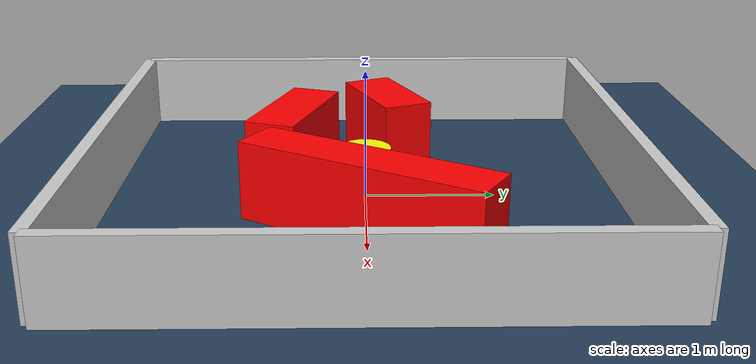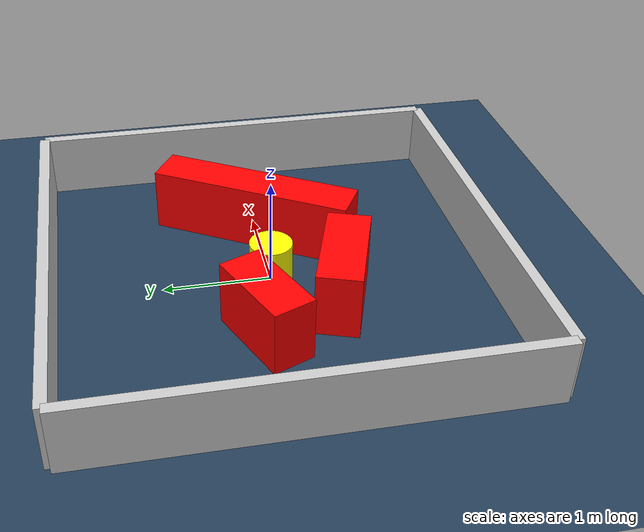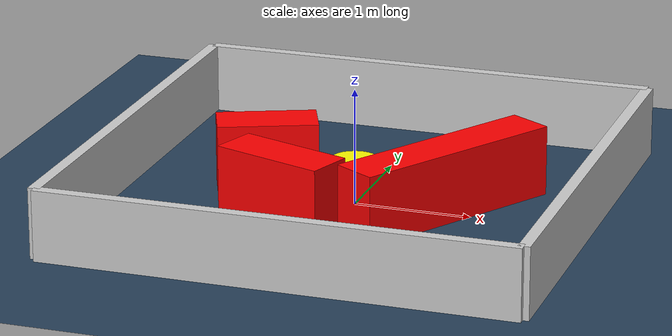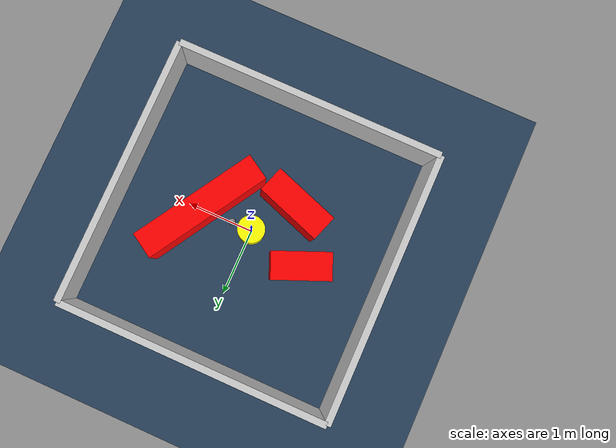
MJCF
<?xml version="1.0" ?>
<mujoco model="generated_environment">
  <option timestep="0.01" integrator="RK4" cone="elliptic"/>
  <default>
    <geom density="1"/>
  </default>
  <asset>
    <texture builtin="gradient" height="3072" rgb1="0.3 0.5 0.7" rgb2="0 0 0" type="skybox" width="512"/>
    <texture builtin="checker" height="300" mark="edge" markrgb="0.8 0.8 0.8" name="groundplane" rgb1="0.2 0.3 0.4" rgb2="0.1 0.2 0.3" type="2d" width="300"/>
    <material name="groundplane" reflectance="0.2" texrepeat="5 5" texture="groundplane" texuniform="true"/>
    <material name="robot" rgba="0.0 1.0 0.0 1"/>
  </asset>
  <worldbody>
    <light dir="0 0 -1" directional="true" pos="0 0 1.5"/>
    <geom condim="4" friction="1.0 0.005 0.001" material="groundplane" name="floor" size="0 0 0.05" type="plane"/>
    <body name="walls">
      <geom name="wall_1" condim="4" pos="-2.0 0.0 0.3" rgba="0.800000011920929 0.800000011920929 0.800000011920929 1.0" size="0.05 2.0 0.3" type="box"/>
      <geom name="wall_2" condim="4" pos="2.0 0.0 0.3" rgba="0.800000011920929 0.800000011920929 0.800000011920929 1.0" size="0.05 2.0 0.3" type="box"/>
      <geom name="wall_3" condim="4" pos="0.0 -2.0 0.3" rgba="0.800000011920929 0.800000011920929 0.800000011920929 1.0" size="2.0 0.05 0.3" type="box"/>
      <geom name="wall_4" condim="4" pos="0.0 2.0 0.3" rgba="0.800000011920929 0.800000011920929 0.800000011920929 1.0" size="2.0 0.05 0.3" type="box"/>
    </body>
    <body name="robot">
      <joint name="joint_x" type="slide" pos="0 0 0" axis="1 0 0"/>
      <joint name="joint_y" type="slide" pos="0 0 0" axis="0 1 0"/>
      <geom name="robot" type="sphere" pos="0.3 0.0 0.2" size="0.05" mass="5." friction="1.0 0.005 0.0001" condim="4" rgba="0.5 0.5 0.5 1.0"/>
      <site name="sensor_ball"/>
    </body>
    <body name="obstacle_movable_1">
      <geom name="obstacle_movable_1" condim="4" pos="0.0 0.0 0.2" euler="0 0 0.0" friction="1.0 0.005 0.001" rgba="1.0 1.0 0.0 1.0" size="0.2 0.2 0.0" type="cylinder" mass="0.1"/>
      <joint type="free"/>
    </body>
    <body name="obstacle_2_static">
      <geom name="obstacle_2_static" condim="4" pos="-0.8398438858886423 0.19427992454637244 0.3" euler="0 0 22.658018816501794" friction="1.0 0.005 0.001" rgba="1 0 0 1" size="0.4245678939140229 0.2 0.3" type="box"/>
    </body>
    <body name="obstacle_3_static">
      <geom name="obstacle_3_static" condim="4" pos="0.7678530238822603 0.010196650508875527 0.3" euler="0 0 238.56002217831326" friction="1.0 0.005 0.001" rgba="1 0 0 1" size="0.9706650180981946 0.2 0.3" type="box"/>
    </body>
    <body name="obstacle_4_static">
      <geom name="obstacle_4_static" condim="4" pos="-0.4438093642392711 -0.5668672584327672 0.3" euler="0 0 340.7713384664322" friction="1.0 0.005 0.001" rgba="1 0 0 1" size="0.5047884012885372 0.2 0.3" type="box"/>
    </body>
  </worldbody>
  <actuator>
    <motor name="actuator_x" joint="joint_x" gear="1" ctrlrange="-1 1"/>
    <motor name="actuator_y" joint="joint_y" gear="1" ctrlrange="-1 1"/>
  </actuator>
</mujoco>
